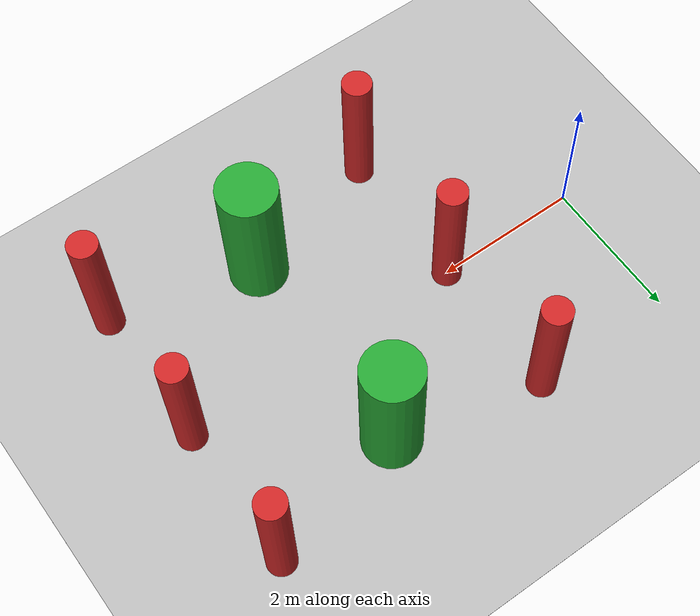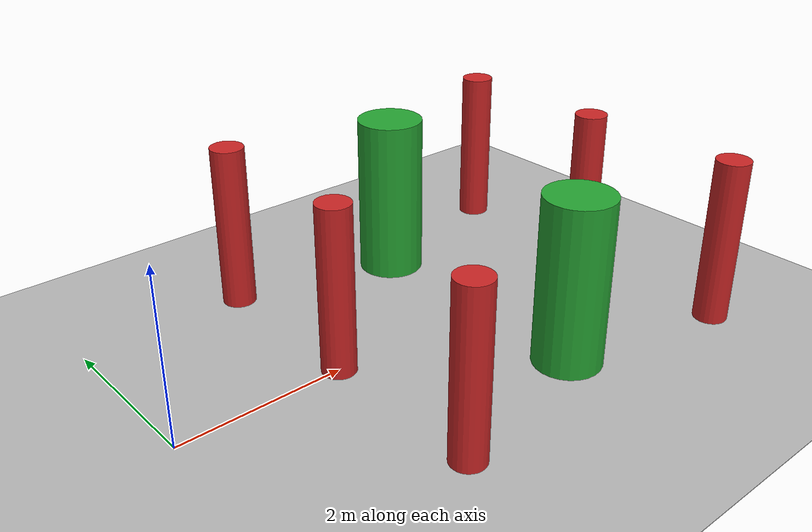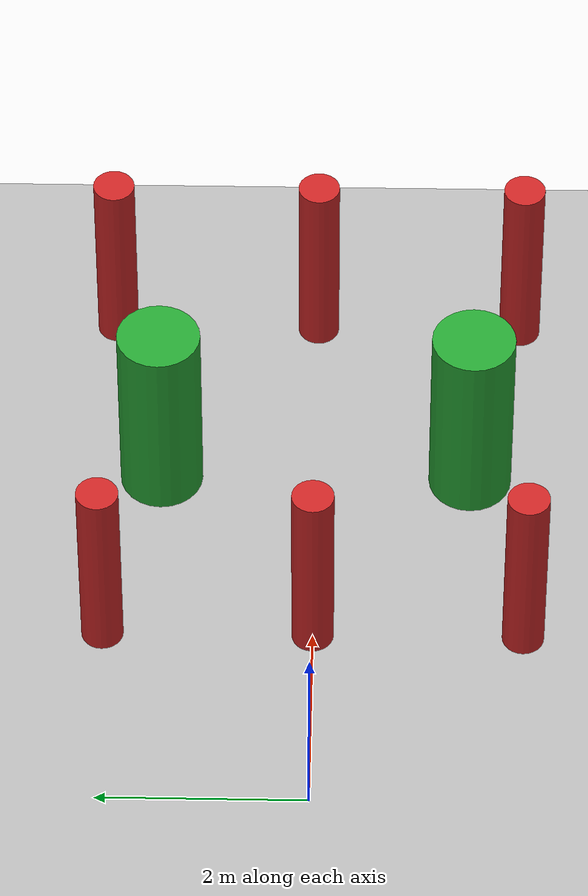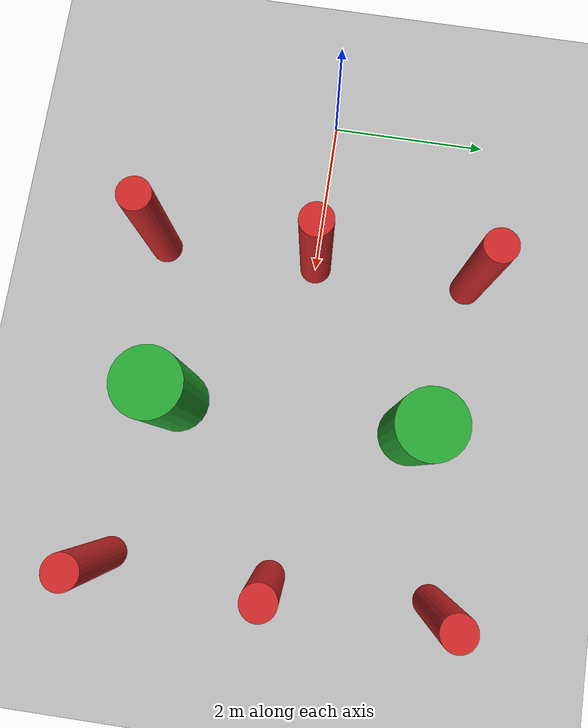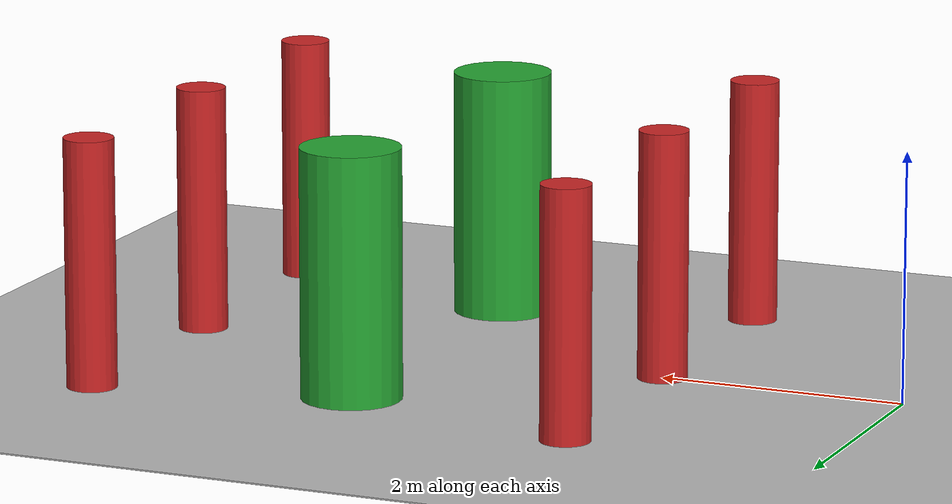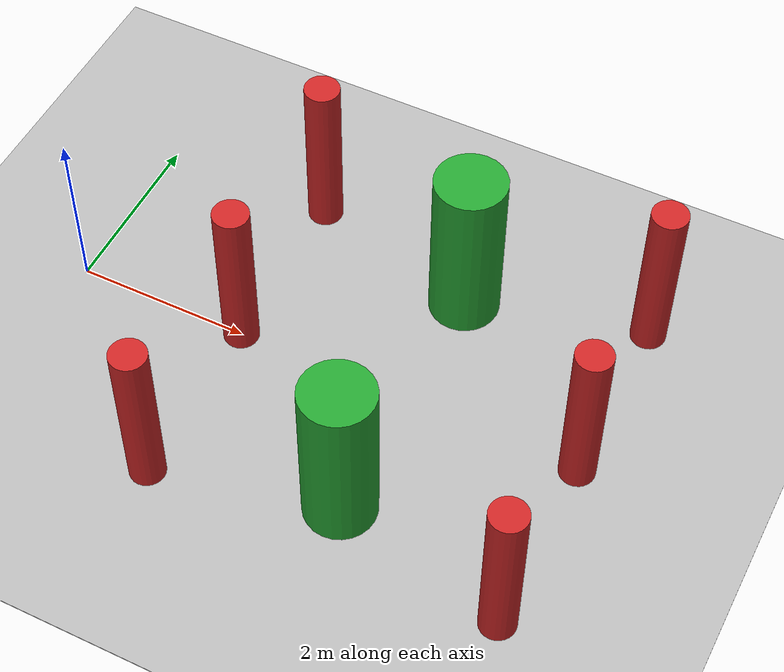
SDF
<?xml version="1.0"?>
<sdf version='1.7'>
  <world name='planning_test2'>
    <!-- 动力学库 -->
    <physics type='ode'>
      <gravity>0 0 -9.8066</gravity>
      <ode>
        <solver>
          <type>quick</type>
          <iters>10</iters>
          <sor>1.3</sor>
          <use_dynamic_moi_rescaling>0</use_dynamic_moi_rescaling>
        </solver>
        <constraints>
          <cfm>0.00001</cfm>
          <erp>0.2</erp>
          <contact_max_correcting_vel>1000</contact_max_correcting_vel>
          <contact_surface_layer>0.01</contact_surface_layer>
        </constraints>
      </ode>
      <max_step_size>0.004</max_step_size>
      <real_time_factor>1.0</real_time_factor>
      <real_time_update_rate>250</real_time_update_rate>
      <magnetic_field>6.0e-6 2.3e-5 -4.2e-5</magnetic_field>
    </physics>

    <!-- 初始视角 -->
    <gui fullscreen='0'>
      <camera name='user_camera'>
        <pose>-13.0 0.0 12.0 0 0.75 0.0</pose>
        <view_controller>orbit</view_controller>
      </camera>
    </gui>

    <!-- 光源 -->
    <light type="directional" name="sun">
      <cast_shadows>false</cast_shadows>
      <pose>0 0 100 0 0 0</pose>
      <diffuse>0.8 0.8 0.8 1</diffuse>
      <specular>0.9 0.9 0.9 1</specular>
      <attenuation>
        <range>1000</range>
        <constant>0.9</constant>
        <linear>0.01</linear>
        <quadratic>0.001</quadratic>
      </attenuation>
      <direction>0.2 0.2 -0.9</direction>
    </light>

    <scene>
      <shadows>0</shadows>
    </scene>

    <!-- 地面 -->
    <include>
      <uri>model://ground_plane</uri>
    </include>

    <!-- 无人机标志 -->
    <include>
      <uri>model://yundrone</uri>
      <name>yundrone</name>
      <pose>0 0 0 0 0 0</pose>
      <static>true</static>
    </include>

    <!-- ============== 圆柱体模型引用 ============== -->

    <include>
      <uri>model://cylinder_20cm</uri>
      <name>cylinder_20cm_0</name>
      <pose>2 2 1 0 0 0</pose>
      <static>true</static>
    </include>

    <include>
      <uri>model://cylinder_20cm</uri>
      <name>cylinder_20cm_1</name>
      <pose>2 0 1 0 0 0</pose>
      <static>true</static>
    </include>

    <include>
      <uri>model://cylinder_20cm</uri>
      <name>cylinder_20cm_2</name>
      <pose>2 -2 1 0 0 0</pose>
      <static>true</static>
    </include>

    <include>
      <uri>model://cylinder_20cm</uri>
      <name>cylinder_20cm_3</name>
      <pose>6 2 1 0 0 0</pose>
      <static>true</static>
    </include>

    <include>
      <uri>model://cylinder_20cm</uri>
      <name>cylinder_20cm_4</name>
      <pose>6 0 1 0 0 0</pose>
      <static>true</static>
    </include>

    <include>
      <uri>model://cylinder_20cm</uri>
      <name>cylinder_20cm_5</name>
      <pose>6 -2 1 0 0 0</pose>
      <static>true</static>
    </include>

    <include>
      <uri>model://cylinder_40cm</uri>
      <name>cylinder_40cm_0</name>
      <pose>4 1.5 1 0 0 0</pose>
      <static>true</static>
    </include>

    <include>
      <uri>model://cylinder_40cm</uri>
      <name>cylinder_40cm_1</name>
      <pose>4 -1.5 1 0 0 0</pose>
      <static>true</static>
    </include>
  </world>
</sdf>

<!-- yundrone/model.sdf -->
<sdf version="1.5">
    <model name='yundrone'>
      <static>true</static>
      <link name="yundrone">
        <pose frame=''> 0.0 0.0 0.0 0.0 0.0 0.0</pose>
        <visual name="visual">
            <cast_shadows>false</cast_shadows>
            <geometry>
              <box>
                <size>20.0 20.0 0.01</size>
              </box>
            </geometry>
            <material>
              <script>
                <uri>model://yundrone_logo/yundrone_logo.material</uri>
                <name>yundrone_logo</name>
              </script>
            </material>
        </visual>
      </link>
    </model>
</sdf>

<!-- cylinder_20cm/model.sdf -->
<sdf version="1.7">
  <model name="cylinder_20cm">
    <link name="link">
      <!-- 视觉属性 -->
      <visual name="visual">
        <geometry>
          <cylinder>
            <radius>0.2</radius>
            <length>2</length>
          </cylinder>
        </geometry>
        <material>
          <!-- 使用Gazebo预置红色材质 -->
          <script>
            <uri>file://media/materials/scripts/gazebo.material</uri>
            <name>Gazebo/Red</name>
          </script>
          <!-- 或直接使用RGBA值 -->
        </material>
      </visual>

      <!-- 碰撞属性 -->
      <collision name="collision">
        <geometry>
          <cylinder>
            <radius>0.2</radius>
            <length>2</length>
          </cylinder>
        </geometry>
      </collision>

      <!-- 物理属性 -->
      <inertial>
        <mass>1</mass>  <!-- 质量设为1kg -->
        <inertia>
          <!-- 圆柱体惯性矩阵（基于质量1kg计算） -->
          <ixx>0.3358</ixx>
          <ixy>0</ixy>
          <ixz>0</ixz>
          <iyy>0.3358</iyy>
          <iyz>0</iyz>
          <izz>0.005</izz>
        </inertia>
      </inertial>
    </link>
  </model>
</sdf>

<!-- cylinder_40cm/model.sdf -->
<sdf version="1.7">
  <model name="cylinder_40cm">
    <link name="link">
      <!-- 视觉属性 -->
      <visual name="visual">
        <geometry>
          <cylinder>
            <radius>0.4</radius>
            <length>2</length>
          </cylinder>
        </geometry>
        <material>
          <!-- 使用Gazebo预置红色材质 -->
          <script>
            <uri>file://media/materials/scripts/gazebo.material</uri>
            <name>Gazebo/Green</name>
          </script>
          <!-- 或直接使用RGBA值 -->
        </material>
      </visual>

      <!-- 碰撞属性 -->
      <collision name="collision">
        <geometry>
          <cylinder>
            <radius>0.4</radius>
            <length>2</length>
          </cylinder>
        </geometry>
      </collision>

      <!-- 物理属性 -->
      <inertial>
        <mass>1</mass>  <!-- 质量设为1kg -->
        <inertia>
          <!-- 圆柱体惯性矩阵（基于质量1kg计算） -->
          <ixx>0.3358</ixx>
          <ixy>0</ixy>
          <ixz>0</ixz>
          <iyy>0.3358</iyy>
          <iyz>0</iyz>
          <izz>0.005</izz>
        </inertia>
      </inertial>
    </link>
  </model>
</sdf>
